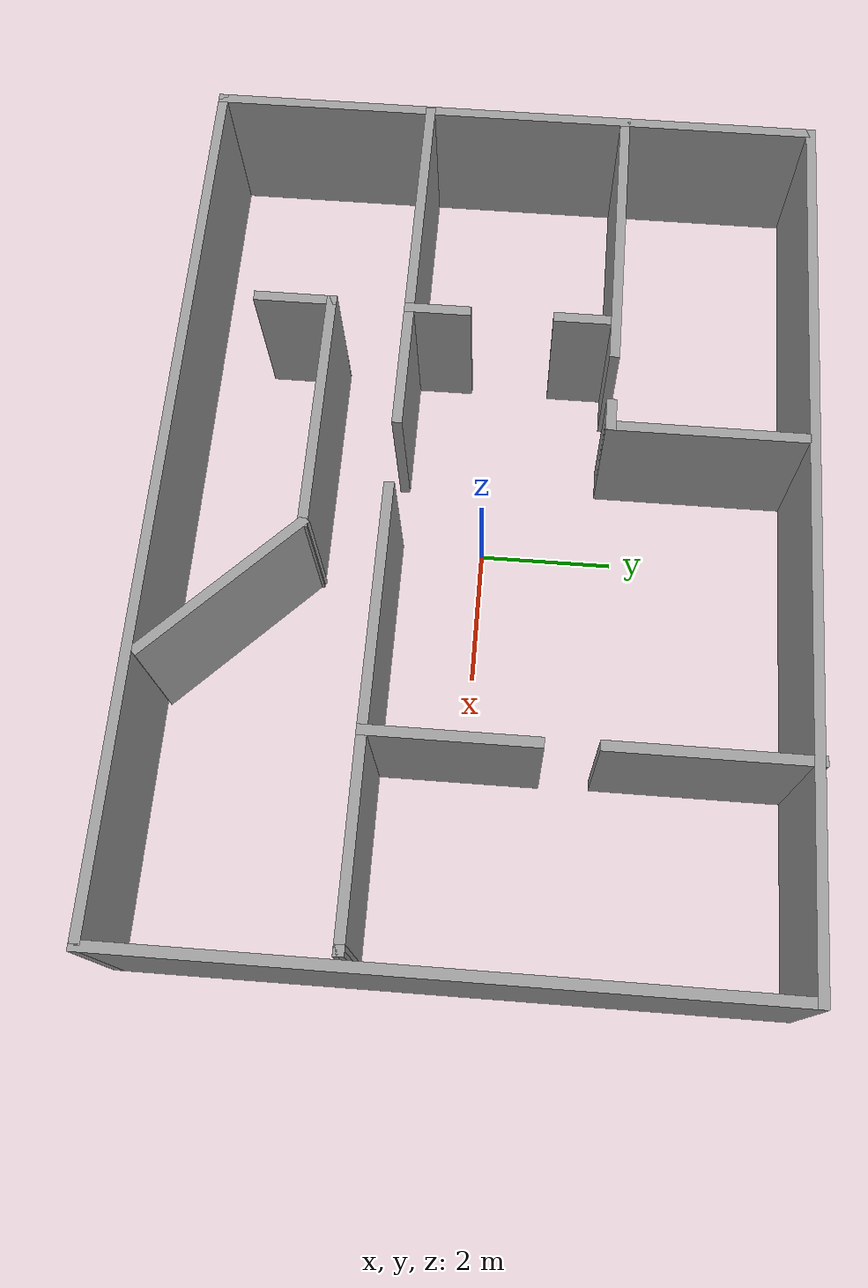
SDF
<?xml version='1.0'?>
<sdf version='1.6'>
  <model name='Office_room'>
    <pose frame=''>-0.038937 0.059204 0 0 -0 0</pose>
    <link name='Wall_1'>
      <collision name='Wall_1_Collision'>
        <geometry>
          <box>
            <size>13.25 0.15 2.5</size>
          </box>
        </geometry>
        <pose frame=''>0 0 1.25 0 -0 0</pose>
      </collision>
      <visual name='Wall_1_Visual'>
        <pose frame=''>0 0 1.25 0 -0 0</pose>
        <geometry>
          <box>
            <size>13.25 0.15 2.5</size>
          </box>
        </geometry>
        <material>
          <script>
            <uri>file://media/materials/scripts/gazebo.material</uri>
            <name>Gazebo/Grey</name>
          </script>
          <ambient>1 1 1 1</ambient>
        </material>
      </visual>
      <pose frame=''>0 4.65589 0 0 -0 0</pose>
    </link>
    <link name='Wall_14'>
      <collision name='Wall_14_Collision'>
        <geometry>
          <box>
            <size>2.5 0.15 2.5</size>
          </box>
        </geometry>
        <pose frame=''>0 0 1.25 0 -0 0</pose>
      </collision>
      <visual name='Wall_14_Visual'>
        <pose frame=''>0 0 1.25 0 -0 0</pose>
        <geometry>
          <box>
            <size>2.5 0.15 2.5</size>
          </box>
        </geometry>
        <material>
          <script>
            <uri>file://media/materials/scripts/gazebo.material</uri>
            <name>Gazebo/Grey</name>
          </script>
          <ambient>1 1 1 1</ambient>
        </material>
      </visual>
      <pose frame=''>3.53844 -0.219174 0 0 -0 1.5708</pose>
    </link>
    <link name='Wall_16'>
      <collision name='Wall_16_Collision'>
        <geometry>
          <box>
            <size>3 0.15 2.5</size>
          </box>
        </geometry>
        <pose frame=''>0 0 1.25 0 -0 0</pose>
      </collision>
      <visual name='Wall_16_Visual'>
        <pose frame=''>0 0 1.25 0 -0 0</pose>
        <geometry>
          <box>
            <size>3 0.15 2.5</size>
          </box>
        </geometry>
        <material>
          <script>
            <uri>file://media/materials/scripts/gazebo.material</uri>
            <name>Gazebo/Grey</name>
          </script>
          <ambient>1 1 1 1</ambient>
        </material>
      </visual>
      <pose frame=''>3.51833 3.26911 0 0 -0 1.5708</pose>
    </link>
    <link name='Wall_2'>
      <collision name='Wall_2_Collision'>
        <geometry>
          <box>
            <size>9.5 0.15 2.5</size>
          </box>
        </geometry>
        <pose frame=''>0 0 1.25 0 -0 0</pose>
      </collision>
      <visual name='Wall_2_Visual'>
        <pose frame=''>0 0 1.25 0 -0 0</pose>
        <geometry>
          <box>
            <size>9.5 0.15 2.5</size>
          </box>
        </geometry>
        <material>
          <script>
            <uri>file://media/materials/scripts/gazebo.material</uri>
            <name>Gazebo/Grey</name>
          </script>
          <ambient>1 1 1 1</ambient>
        </material>
      </visual>
      <pose frame=''>6.55 -0.019111 0 0 0 -1.5708</pose>
    </link>
    <link name='Wall_20'>
      <collision name='Wall_20_Collision'>
        <geometry>
          <box>
            <size>0.5 0.15 2.5</size>
          </box>
        </geometry>
        <pose frame=''>0 0 1.25 0 -0 0</pose>
      </collision>
      <visual name='Wall_20_Visual'>
        <pose frame=''>0 0 1.25 0 -0 0</pose>
        <geometry>
          <box>
            <size>0.5 0.15 2.5</size>
          </box>
        </geometry>
        <material>
          <script>
            <uri>file://media/materials/scripts/gazebo.material</uri>
            <name>Gazebo/Grey</name>
          </script>
          <ambient>1 1 1 1</ambient>
        </material>
      </visual>
      <pose frame=''>-1.36171 1.71457 0 0 -0 3.14159</pose>
    </link>
    <link name='Wall_22'>
      <collision name='Wall_22_Collision'>
        <geometry>
          <box>
            <size>4.25 0.15 2.5</size>
          </box>
        </geometry>
        <pose frame=''>0 0 1.25 0 -0 0</pose>
      </collision>
      <visual name='Wall_22_Visual'>
        <pose frame=''>0 0 1.25 0 -0 0</pose>
        <geometry>
          <box>
            <size>4.25 0.15 2.5</size>
          </box>
        </geometry>
        <material>
          <script>
            <uri>file://media/materials/scripts/gazebo.material</uri>
            <name>Gazebo/Grey</name>
          </script>
          <ambient>1 1 1 1</ambient>
        </material>
      </visual>
      <pose frame=''>-4.43612 1.72482 0 0 -0 3.14159</pose>
    </link>
    <link name='Wall_3'>
      <collision name='Wall_3_Collision'>
        <geometry>
          <box>
            <size>13.25 0.15 2.5</size>
          </box>
        </geometry>
        <pose frame=''>0 0 1.25 0 -0 0</pose>
      </collision>
      <visual name='Wall_3_Visual'>
        <pose frame=''>0 0 1.25 0 -0 0</pose>
        <geometry>
          <box>
            <size>13.25 0.15 2.5</size>
          </box>
        </geometry>
        <material>
          <script>
            <uri>file://media/materials/scripts/gazebo.material</uri>
            <name>Gazebo/Grey</name>
          </script>
          <ambient>1 1 1 1</ambient>
        </material>
      </visual>
      <pose frame=''>0 -4.69411 0 0 -0 3.14159</pose>
    </link>
    <link name='Wall_30'>
      <collision name='Wall_30_Collision'>
        <geometry>
          <box>
            <size>1 0.15 2.5</size>
          </box>
        </geometry>
        <pose frame=''>0 0 1.25 0 -0 0</pose>
      </collision>
      <visual name='Wall_30_Visual'>
        <pose frame=''>0 0 1.25 0 -0 0</pose>
        <geometry>
          <box>
            <size>1 0.15 2.5</size>
          </box>
        </geometry>
        <material>
          <script>
            <uri>file://media/materials/scripts/gazebo.material</uri>
            <name>Gazebo/Grey</name>
          </script>
          <ambient>1 1 1 1</ambient>
        </material>
      </visual>
      <pose frame=''>-2.92919 1.28874 0 0 -0 1.5708</pose>
    </link>
    <link name='Wall_33'>
      <collision name='Wall_33_Collision'>
        <geometry>
          <box>
            <size>1 0.15 2.5</size>
          </box>
        </geometry>
        <pose frame=''>0 0 1.25 0 -0 0</pose>
      </collision>
      <visual name='Wall_33_Visual'>
        <pose frame=''>0 0 1.25 0 -0 0</pose>
        <geometry>
          <box>
            <size>1 0.15 2.5</size>
          </box>
        </geometry>
        <material>
          <script>
            <uri>file://media/materials/scripts/gazebo.material</uri>
            <name>Gazebo/Grey</name>
          </script>
          <ambient>1 1 1 1</ambient>
        </material>
      </visual>
      <pose frame=''>-2.92919 -0.947674 0 0 -0 1.5708</pose>
    </link>
    <link name='Wall_35'>
      <collision name='Wall_35_Collision'>
        <geometry>
          <box>
            <size>3.75 0.15 2.5</size>
          </box>
        </geometry>
        <pose frame=''>0 0 1.25 0 -0 0</pose>
      </collision>
      <visual name='Wall_35_Visual'>
        <pose frame=''>0 0 1.25 0 -0 0</pose>
        <geometry>
          <box>
            <size>3.75 0.15 2.5</size>
          </box>
        </geometry>
        <material>
          <script>
            <uri>file://media/materials/scripts/gazebo.material</uri>
            <name>Gazebo/Grey</name>
          </script>
          <ambient>1 1 1 1</ambient>
        </material>
      </visual>
      <pose frame=''>-4.72919 -1.37267 0 0 -0 3.14159</pose>
    </link>
    <link name='Wall_4'>
      <collision name='Wall_4_Collision'>
        <geometry>
          <box>
            <size>9.5 0.15 2.5</size>
          </box>
        </geometry>
        <pose frame=''>0 0 1.25 0 -0 0</pose>
      </collision>
      <visual name='Wall_4_Visual'>
        <pose frame=''>0 0 1.25 0 -0 0</pose>
        <geometry>
          <box>
            <size>9.5 0.15 2.5</size>
          </box>
        </geometry>
        <material>
          <script>
            <uri>file://media/materials/scripts/gazebo.material</uri>
            <name>Gazebo/Grey</name>
          </script>
          <ambient>1 1 1 1</ambient>
        </material>
      </visual>
      <pose frame=''>-6.55 -0.019111 0 0 -0 1.5708</pose>
    </link>
    <link name='Wall_41'>
      <collision name='Wall_41_Collision'>
        <geometry>
          <box>
            <size>0.15 0.15 2.5</size>
          </box>
        </geometry>
        <pose frame=''>0 0 1.25 0 -0 0</pose>
      </collision>
      <visual name='Wall_41_Visual'>
        <pose frame=''>0 0 1.25 0 -0 0</pose>
        <geometry>
          <box>
            <size>0.15 0.15 2.5</size>
          </box>
        </geometry>
        <material>
          <script>
            <uri>file://media/materials/scripts/gazebo.material</uri>
            <name>Gazebo/Grey</name>
          </script>
          <ambient>1 1 1 1</ambient>
        </material>
      </visual>
      <pose frame=''>6.36654 -1.37916 0 0 -0 0</pose>
    </link>
    <link name='Wall_43'>
      <collision name='Wall_43_Collision'>
        <geometry>
          <box>
            <size>3.67556 0.15 2.5</size>
          </box>
        </geometry>
        <pose frame=''>0 0 1.25 0 -0 0</pose>
      </collision>
      <visual name='Wall_43_Visual'>
        <pose frame=''>0 0 1.25 0 -0 0</pose>
        <geometry>
          <box>
            <size>3.67556 0.15 2.5</size>
          </box>
        </geometry>
        <material>
          <script>
            <uri>file://media/materials/scripts/gazebo.material</uri>
            <name>Gazebo/Grey</name>
          </script>
          <ambient>1 1 1 1</ambient>
        </material>
      </visual>
      <pose frame=''>1.77566 -1.39119 0 0 0 -0.001695</pose>
    </link>
    <link name='Wall_45'>
      <collision name='Wall_45_Collision'>
        <geometry>
          <box>
            <size>2.97814 0.15 2.5</size>
          </box>
        </geometry>
        <pose frame=''>0 0 1.25 0 -0 0</pose>
      </collision>
      <visual name='Wall_45_Visual'>
        <pose frame=''>0 0 1.25 0 -0 0</pose>
        <geometry>
          <box>
            <size>2.97814 0.15 2.5</size>
          </box>
        </geometry>
        <material>
          <script>
            <uri>file://media/materials/scripts/gazebo.material</uri>
            <name>Gazebo/Grey</name>
          </script>
          <ambient>1 1 1 1</ambient>
        </material>
      </visual>
      <pose frame=''>4.95249 -1.38667 0 0 -0 0.00531</pose>
    </link>
    <link name='Wall_47'>
      <collision name='Wall_47_Collision'>
        <geometry>
          <box>
            <size>2 0.15 2.5</size>
          </box>
        </geometry>
        <pose frame=''>0 0 1.25 0 -0 0</pose>
      </collision>
      <visual name='Wall_47_Visual'>
        <pose frame=''>0 0 1.25 0 -0 0</pose>
        <geometry>
          <box>
            <size>2 0.15 2.5</size>
          </box>
        </geometry>
        <material>
          <script>
            <uri>file://media/materials/scripts/gazebo.material</uri>
            <name>Gazebo/Grey</name>
          </script>
          <ambient>1 1 1 1</ambient>
        </material>
      </visual>
      <pose frame=''>-2.00419 -1.37267 0 0 -0 0</pose>
    </link>
    <link name='Wall_60'>
      <collision name='Wall_60_Collision'>
        <geometry>
          <box>
            <size>1.25 0.15 2.5</size>
          </box>
        </geometry>
        <pose frame=''>0 0 1.25 0 -0 0</pose>
      </collision>
      <visual name='Wall_60_Visual'>
        <pose frame=''>0 0 1.25 0 -0 0</pose>
        <geometry>
          <box>
            <size>1.25 0.15 2.5</size>
          </box>
        </geometry>
        <material>
          <script>
            <uri>file://media/materials/scripts/gazebo.material</uri>
            <name>Gazebo/Grey</name>
          </script>
          <ambient>1 1 1 1</ambient>
        </material>
      </visual>
      <pose frame=''>-2.96608 -3.09394 0 0 0 -1.5708</pose>
    </link>
    <link name='Wall_62'>
      <collision name='Wall_62_Collision'>
        <geometry>
          <box>
            <size>3.75 0.15 2.5</size>
          </box>
        </geometry>
        <pose frame=''>0 0 1.25 0 -0 0</pose>
      </collision>
      <visual name='Wall_62_Visual'>
        <pose frame=''>0 0 1.25 0 -0 0</pose>
        <geometry>
          <box>
            <size>3.75 0.15 2.5</size>
          </box>
        </geometry>
        <material>
          <script>
            <uri>file://media/materials/scripts/gazebo.material</uri>
            <name>Gazebo/Grey</name>
          </script>
          <ambient>1 1 1 1</ambient>
        </material>
      </visual>
      <pose frame=''>-1.16608 -2.54394 0 0 -0 0</pose>
    </link>
    <link name='Wall_63'>
      <collision name='Wall_63_Collision'>
        <geometry>
          <box>
            <size>3 0.15 2.5</size>
          </box>
        </geometry>
        <pose frame=''>0 0 1.25 0 -0 0</pose>
      </collision>
      <visual name='Wall_63_Visual'>
        <pose frame=''>0 0 1.25 0 -0 0</pose>
        <geometry>
          <box>
            <size>3 0.15 2.5</size>
          </box>
        </geometry>
        <material>
          <script>
            <uri>file://media/materials/scripts/gazebo.material</uri>
            <name>Gazebo/Grey</name>
          </script>
          <ambient>1 1 1 1</ambient>
        </material>
      </visual>
      <pose frame=''>1.64155 -3.55157 0 0 0 -0.785398</pose>
    </link>
    <link name='Wall_8'>
      <collision name='Wall_8_Collision'>
        <geometry>
          <box>
            <size>3 0.15 2.5</size>
          </box>
        </geometry>
        <pose frame=''>0 0 1.25 0 -0 0</pose>
      </collision>
      <visual name='Wall_8_Visual'>
        <pose frame=''>0 0 1.25 0 -0 0</pose>
        <geometry>
          <box>
            <size>3 0.15 2.5</size>
          </box>
        </geometry>
        <material>
          <script>
            <uri>file://media/materials/scripts/gazebo.material</uri>
            <name>Gazebo/Grey</name>
          </script>
          <ambient>1 1 1 1</ambient>
        </material>
      </visual>
      <pose frame=''>-1.18671 3.13957 0 0 -0 1.5708</pose>
    </link>
    <static>1</static>
  </model>
</sdf>
